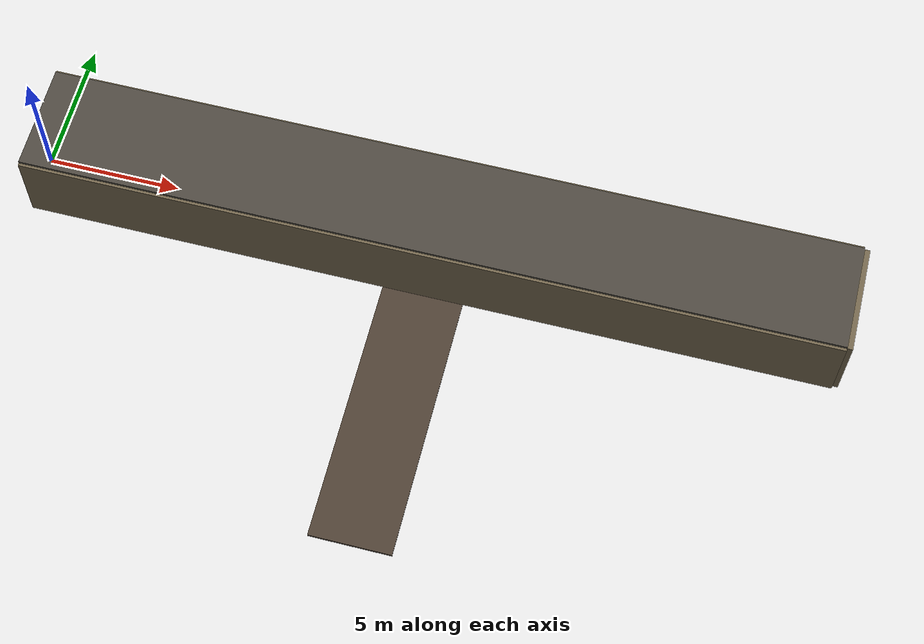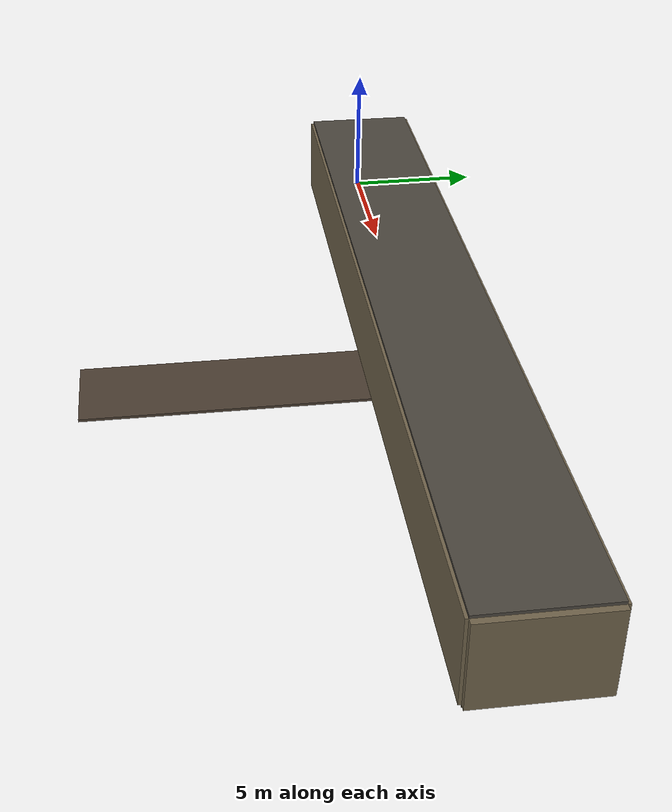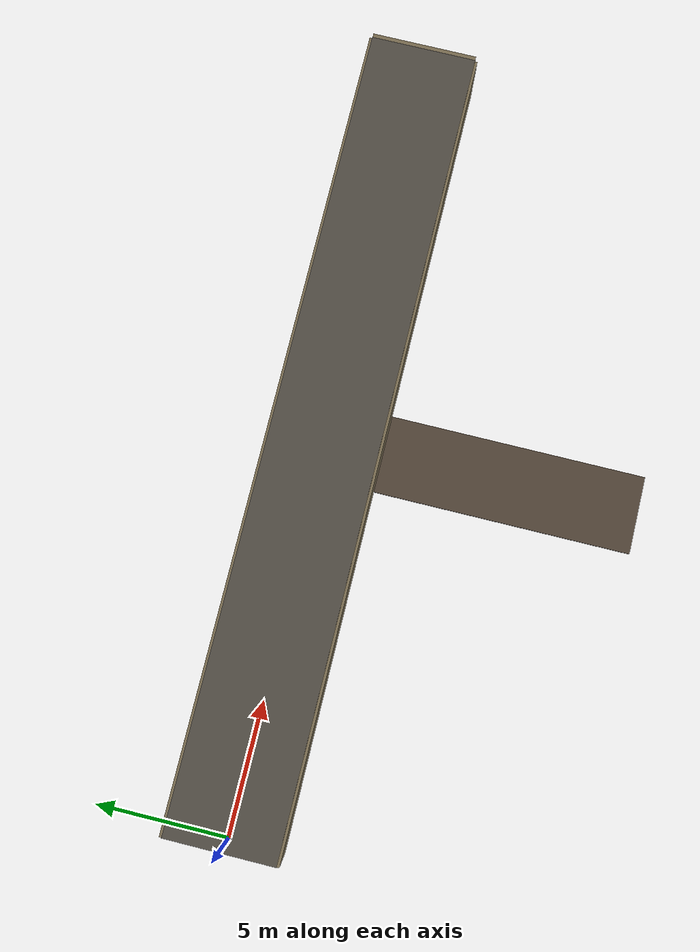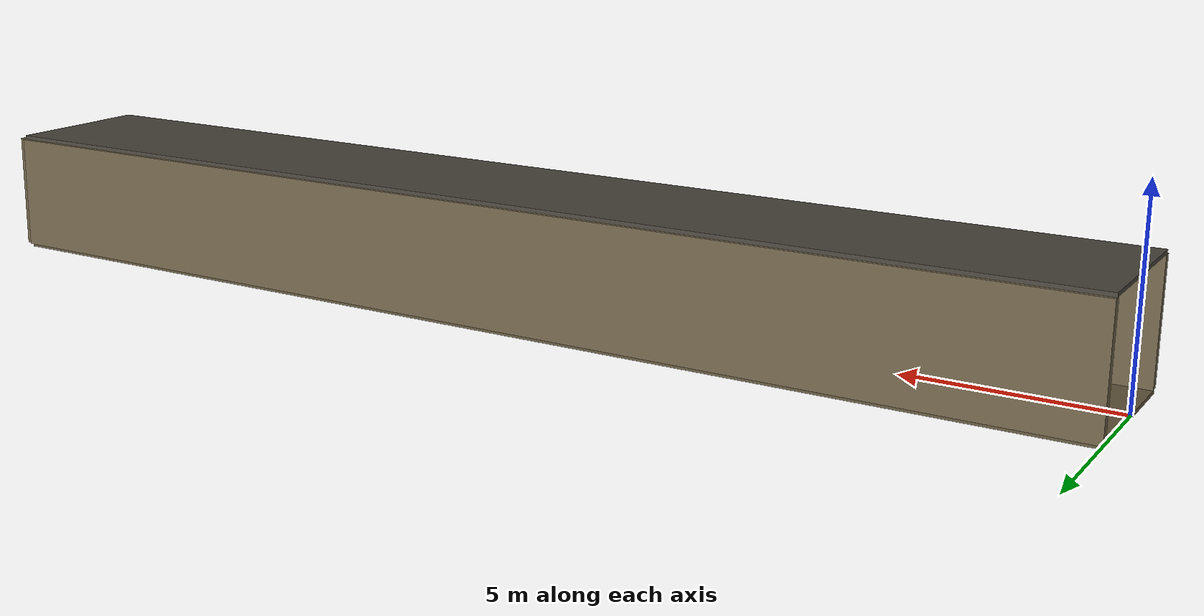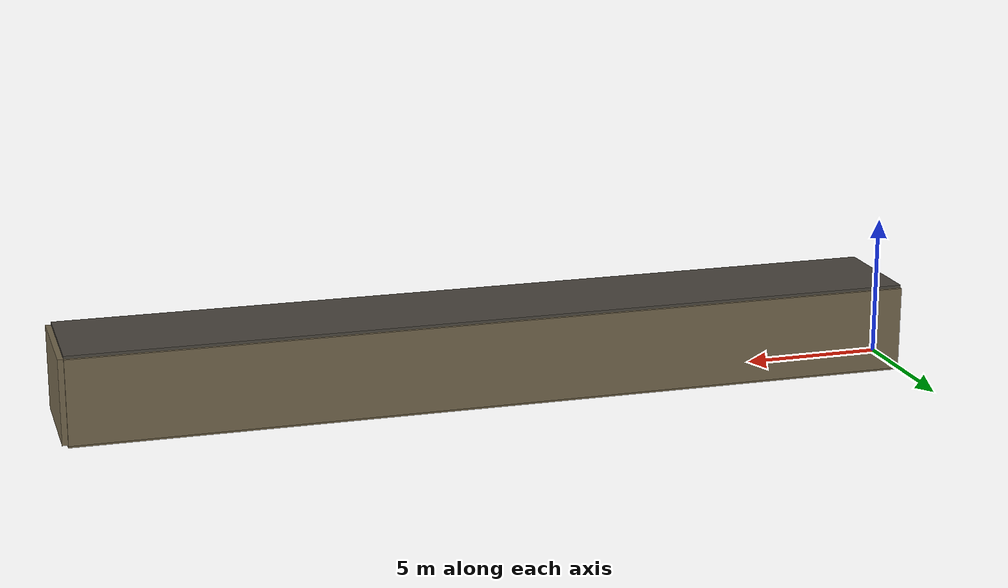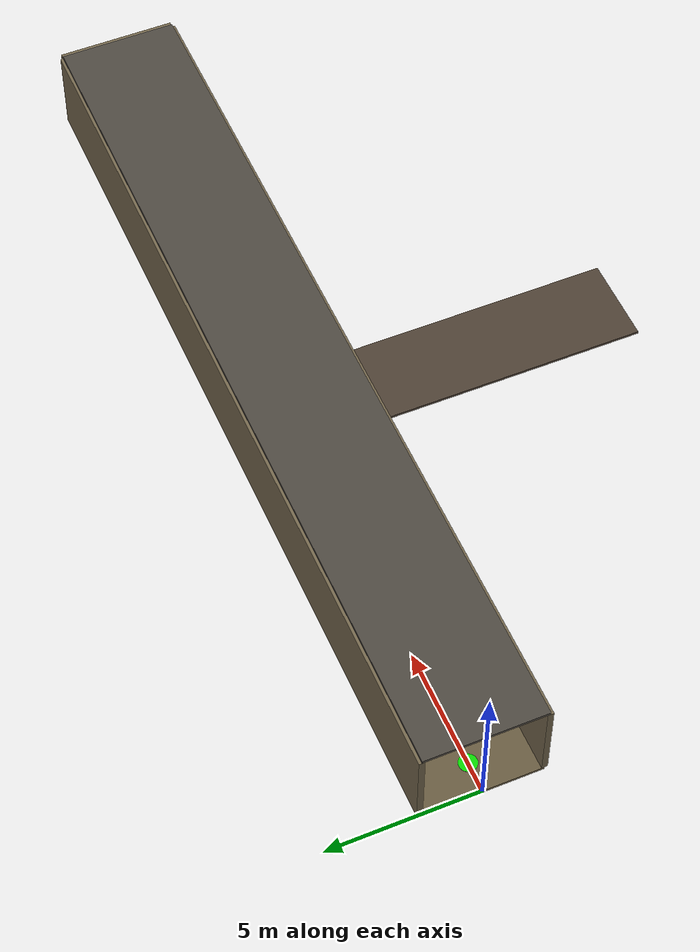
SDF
<?xml version="1.0" ?>
<sdf version="1.9">
  <world name="mine_gallery">

    <!-- ── Fizik Motoru ── -->
    <physics name="default_physics" default="true" type="ode">
      <max_step_size>0.001</max_step_size>
      <real_time_factor>1.0</real_time_factor>
      <real_time_update_rate>1000</real_time_update_rate>
    </physics>

    <!-- ── Ortam Işığı (Yer altı - karanlık) ── -->
    <light name="ambient_mine" type="ambient">
      <cast_shadows>false</cast_shadows>
      <diffuse>0.05 0.05 0.05 1.0</diffuse>
      <specular>0.01 0.01 0.01 1.0</specular>
    </light>

    <!-- ── Galeri Başı (Giriş) Işığı ── -->
    <light name="entrance_light" type="point">
      <pose>0 0 2.5 0 0 0</pose>
      <cast_shadows>true</cast_shadows>
      <diffuse>0.8 0.8 0.7 1.0</diffuse>
      <specular>0.3 0.3 0.3 1.0</specular>
      <attenuation>
        <range>8.0</range>
        <constant>0.2</constant>
        <linear>0.1</linear>
        <quadratic>0.05</quadratic>
      </attenuation>
    </light>

    <!-- ══════════════════════════════════════════════
         ANA GALERİ (30m uzunluk, 3m genişlik, 3m yükseklik)
         ══════════════════════════════════════════════ -->

    <!-- Taban -->
    <model name="floor">
      <static>true</static>
      <pose>15 0 -0.05 0 0 0</pose>
      <link name="link">
        <collision name="col">
          <geometry>
            <box><size>30 4 0.1</size></box>
          </geometry>
        </collision>
        <visual name="vis">
          <geometry>
            <box><size>30 4 0.1</size></box>
          </geometry>
          <material>
            <ambient>0.3 0.25 0.2 1</ambient>
            <diffuse>0.4 0.35 0.25 1</diffuse>
          </material>
        </visual>
      </link>
    </model>

    <!-- Sol Duvar -->
    <model name="left_wall">
      <static>true</static>
      <pose>15 2 1.5 0 0 0</pose>
      <link name="link">
        <collision name="col">
          <geometry><box><size>30 0.2 3</size></box></geometry>
        </collision>
        <visual name="vis">
          <geometry><box><size>30 0.2 3</size></box></geometry>
          <material>
            <ambient>0.35 0.3 0.25 1</ambient>
            <diffuse>0.45 0.4 0.3 1</diffuse>
          </material>
        </visual>
      </link>
    </model>

    <!-- Sağ Duvar -->
    <model name="right_wall">
      <static>true</static>
      <pose>15 -2 1.5 0 0 0</pose>
      <link name="link">
        <collision name="col">
          <geometry><box><size>30 0.2 3</size></box></geometry>
        </collision>
        <visual name="vis">
          <geometry><box><size>30 0.2 3</size></box></geometry>
          <material>
            <ambient>0.35 0.3 0.25 1</ambient>
            <diffuse>0.45 0.4 0.3 1</diffuse>
          </material>
        </visual>
      </link>
    </model>

    <!-- Tavan -->
    <model name="ceiling">
      <static>true</static>
      <pose>15 0 3.05 0 0 0</pose>
      <link name="link">
        <collision name="col">
          <geometry><box><size>30 4 0.1</size></box></geometry>
        </collision>
        <visual name="vis">
          <geometry><box><size>30 4 0.1</size></box></geometry>
          <material>
            <ambient>0.3 0.28 0.25 1</ambient>
          </material>
        </visual>
      </link>
    </model>

    <!-- Kapalı Uç (Galeri sonu) -->
    <model name="gallery_end">
      <static>true</static>
      <pose>30.1 0 1.5 0 0 0</pose>
      <link name="link">
        <collision name="col">
          <geometry><box><size>0.2 4 3</size></box></geometry>
        </collision>
        <visual name="vis">
          <geometry><box><size>0.2 4 3</size></box></geometry>
          <material>
            <ambient>0.45 0.4 0.3 1</ambient>
          </material>
        </visual>
      </link>
    </model>

    <!-- ══════════════════════════════════════════════
         YAN GALERİ (10m uzunluk - T kavşak)
         ══════════════════════════════════════════════ -->

    <model name="side_gallery_floor">
      <static>true</static>
      <pose>15 -7 -0.05 0 0 0</pose>
      <link name="link">
        <collision name="col">
          <geometry><box><size>3 10 0.1</size></box></geometry>
        </collision>
        <visual name="vis">
          <geometry><box><size>3 10 0.1</size></box></geometry>
          <material>
            <ambient>0.3 0.25 0.2 1</ambient>
          </material>
        </visual>
      </link>
    </model>

    <!-- ══════════════════════════════════════════════
         ENGELLER (Kaya Blokları ve Ekipmanlar)
         ══════════════════════════════════════════════ -->

    <!-- Kaya Bloğu 1 -->
    <model name="rock_block_1">
      <static>true</static>
      <pose>8 0.5 0.4 0 0 0.3</pose>
      <link name="link">
        <collision name="col">
          <geometry><box><size>1.2 0.8 0.8</size></box></geometry>
        </collision>
        <visual name="vis">
          <geometry><box><size>1.2 0.8 0.8</size></box></geometry>
          <material>
            <ambient>0.25 0.22 0.18 1</ambient>
            <diffuse>0.35 0.3 0.25 1</diffuse>
          </material>
        </visual>
      </link>
    </model>

    <!-- Kaya Bloğu 2 -->
    <model name="rock_block_2">
      <static>true</static>
      <pose>18 -0.8 0.35 0 0 -0.2</pose>
      <link name="link">
        <collision name="col">
          <geometry><box><size>0.9 0.7 0.7</size></box></geometry>
        </collision>
        <visual name="vis">
          <geometry><box><size>0.9 0.7 0.7</size></box></geometry>
          <material>
            <ambient>0.28 0.24 0.2 1</ambient>
          </material>
        </visual>
      </link>
    </model>

    <!-- Maden Arabası (Engel) -->
    <model name="mine_cart">
      <static>true</static>
      <pose>24 0 0.5 0 0 0</pose>
      <link name="link">
        <collision name="col">
          <geometry><box><size>1.8 1.0 1.0</size></box></geometry>
        </collision>
        <visual name="vis">
          <geometry><box><size>1.8 1.0 1.0</size></box></geometry>
          <material>
            <ambient>0.2 0.2 0.25 1</ambient>
            <diffuse>0.3 0.3 0.4 1</diffuse>
          </material>
        </visual>
      </link>
    </model>

    <!-- ══════════════════════════════════════════════
         BAŞLANGIÇ POZİSYONU (Robot spawn noktası)
         ══════════════════════════════════════════════ -->

    <!-- Spawn marker (görsel) -->
    <model name="start_marker">
      <static>true</static>
      <pose>1 0 0.02 0 0 0</pose>
      <link name="link">
        <visual name="vis">
          <geometry><cylinder><radius>0.3</radius><length>0.02</length></cylinder></geometry>
          <material>
            <ambient>0.0 0.8 0.0 0.8</ambient>
            <diffuse>0.0 1.0 0.0 0.8</diffuse>
          </material>
        </visual>
      </link>
    </model>

    <!-- Hedef marker (görsel) -->
    <model name="goal_marker">
      <static>true</static>
      <pose>26 0 0.02 0 0 0</pose>
      <link name="link">
        <visual name="vis">
          <geometry><cylinder><radius>0.3</radius><length>0.02</length></cylinder></geometry>
          <material>
            <ambient>0.8 0.0 0.0 0.8</ambient>
            <diffuse>1.0 0.0 0.0 0.8</diffuse>
          </material>
        </visual>
      </link>
    </model>

  </world>
</sdf>
